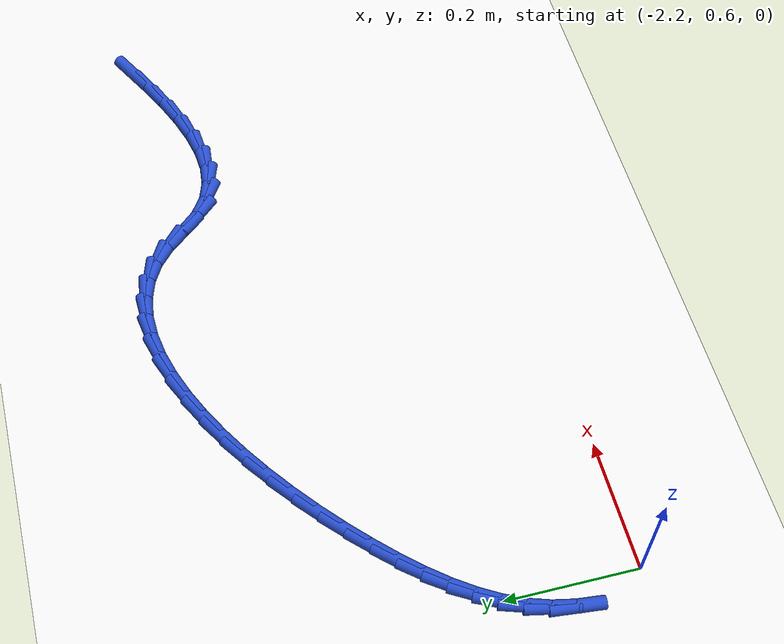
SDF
<sdf version="1.6">
 <world name="default">
  <model name="ground_plane">
   <static>1</static>
   <link name="link">
    <collision name="collision">
     <geometry><plane><normal>0 0 1</normal><size>100 100</size></plane></geometry>
     <surface><friction><ode><mu>100</mu><mu2>50</mu2></ode></friction></surface>
    </collision>
    <visual name="visual">
     <cast_shadows>0</cast_shadows>
     <geometry><plane><normal>0 0 1</normal><size>100 100</size></plane></geometry>
     <material>
      <script><uri>file://media/materials/scripts/gazebo.material</uri><name>Gazebo/WhiteGlow</name></script>
     </material>
    </visual>
   </link>
  </model>
  <model name="line">
   <link name="link_52">
    <pose>-1.1404493071504342 1.1322028931293782 0.01 0 1.57 0.4921242826165503</pose>
    <collision name="collision">
     <geometry><cylinder><radius>0.01</radius><length>0.08</length></cylinder></geometry>
    </collision>
    <visual name="visual">
     <material>
      <script><name>Gazebo/Blue</name><uri>file://media/materials/scripts/gazebo.material</uri></script>
     </material>
     <geometry><cylinder><radius>0.01</radius><length>0.08</length></cylinder></geometry>
    </visual>
   </link>
   <link name="link_53">
    <pose>-1.1806137460902888 1.1106699384140308 0.01 0 1.57 0.4538494542034885</pose>
    <collision name="collision">
     <geometry><cylinder><radius>0.01</radius><length>0.08</length></cylinder></geometry>
    </collision>
    <visual name="visual">
     <material>
      <script><name>Gazebo/Blue</name><uri>file://media/materials/scripts/gazebo.material</uri></script>
     </material>
     <geometry><cylinder><radius>0.01</radius><length>0.08</length></cylinder></geometry>
    </visual>
   </link>
   <link name="link_54">
    <pose>-1.2206163328980695 1.0911562114097548 0.01 0 1.57 0.3990125655813832</pose>
    <collision name="collision">
     <geometry><cylinder><radius>0.01</radius><length>0.08</length></cylinder></geometry>
    </collision>
    <visual name="visual">
     <material>
      <script><name>Gazebo/Blue</name><uri>file://media/materials/scripts/gazebo.material</uri></script>
     </material>
     <geometry><cylinder><radius>0.01</radius><length>0.08</length></cylinder></geometry>
    </visual>
   </link>
   <link name="link_55">
    <pose>-1.260061687138467 1.074524876100984 0.01 0 1.57 0.3230328263287502</pose>
    <collision name="collision">
     <geometry><cylinder><radius>0.01</radius><length>0.08</length></cylinder></geometry>
    </collision>
    <visual name="visual">
     <material>
      <script><name>Gazebo/Blue</name><uri>file://media/materials/scripts/gazebo.material</uri></script>
     </material>
     <geometry><cylinder><radius>0.01</radius><length>0.08</length></cylinder></geometry>
    </visual>
   </link>
   <link name="link_56">
    <pose>-1.2985544283761727 1.061639096472152 0.01 0 1.57 0.21925050515555328</pose>
    <collision name="collision">
     <geometry><cylinder><radius>0.01</radius><length>0.08</length></cylinder></geometry>
    </collision>
    <visual name="visual">
     <material>
      <script><name>Gazebo/Blue</name><uri>file://media/materials/scripts/gazebo.material</uri></script>
     </material>
     <geometry><cylinder><radius>0.01</radius><length>0.08</length></cylinder></geometry>
    </visual>
   </link>
   <link name="link_57">
    <pose>-1.3356991761758779 1.053362036507694 0.01 0 1.57 0.07907397174544131</pose>
    <collision name="collision">
     <geometry><cylinder><radius>0.01</radius><length>0.08</length></cylinder></geometry>
    </collision>
    <visual name="visual">
     <material>
      <script><name>Gazebo/Blue</name><uri>file://media/materials/scripts/gazebo.material</uri></script>
     </material>
     <geometry><cylinder><radius>0.01</radius><length>0.08</length></cylinder></geometry>
    </visual>
   </link>
   <link name="link_58">
    <pose>-1.3711005501022735 1.0505568601920439 0.01 0 1.57 -0.10572556728788335</pose>
    <collision name="collision">
     <geometry><cylinder><radius>0.01</radius><length>0.08</length></cylinder></geometry>
    </collision>
    <visual name="visual">
     <material>
      <script><name>Gazebo/Blue</name><uri>file://media/materials/scripts/gazebo.material</uri></script>
     </material>
     <geometry><cylinder><radius>0.01</radius><length>0.08</length></cylinder></geometry>
    </visual>
   </link>
   <link name="link_59">
    <pose>-1.404363169720051 1.0540867315096354 0.01 0 1.57 -0.3358951157535757</pose>
    <collision name="collision">
     <geometry><cylinder><radius>0.01</radius><length>0.08</length></cylinder></geometry>
    </collision>
    <visual name="visual">
     <material>
      <script><name>Gazebo/Blue</name><uri>file://media/materials/scripts/gazebo.material</uri></script>
     </material>
     <geometry><cylinder><radius>0.01</radius><length>0.08</length></cylinder></geometry>
    </visual>
   </link>
   <link name="link_60">
    <pose>-1.4350916545939016 1.0648148144449028 0.01 0 1.57 -0.5943710312892465</pose>
    <collision name="collision">
     <geometry><cylinder><radius>0.01</radius><length>0.08</length></cylinder></geometry>
    </collision>
    <visual name="visual">
     <material>
      <script><name>Gazebo/Blue</name><uri>file://media/materials/scripts/gazebo.material</uri></script>
     </material>
     <geometry><cylinder><radius>0.01</radius><length>0.08</length></cylinder></geometry>
    </visual>
   </link>
   <link name="link_61">
    <pose>-1.4628906242885162 1.0836042729822803 0.01 0 1.57 -0.8263065147633406</pose>
    <collision name="collision">
     <geometry><cylinder><radius>0.01</radius><length>0.08</length></cylinder></geometry>
    </collision>
    <visual name="visual">
     <material>
      <script><name>Gazebo/Blue</name><uri>file://media/materials/scripts/gazebo.material</uri></script>
     </material>
     <geometry><cylinder><radius>0.01</radius><length>0.08</length></cylinder></geometry>
    </visual>
   </link>
   <link name="link_62">
    <pose>-1.4876874850941624 1.110517697109729 0.01 0 1.57 -0.8735001498892482</pose>
    <collision name="collision">
     <geometry><cylinder><radius>0.01</radius><length>0.08</length></cylinder></geometry>
    </collision>
    <visual name="visual">
     <material>
      <script><name>Gazebo/Blue</name><uri>file://media/materials/scripts/gazebo.material</uri></script>
     </material>
     <geometry><cylinder><radius>0.01</radius><length>0.08</length></cylinder></geometry>
    </visual>
   </link>
   <link name="link_63">
    <pose>-1.5119051842288271 1.1394282488878325 0.01 0 1.57 -0.7202565079342788</pose>
    <collision name="collision">
     <geometry><cylinder><radius>0.01</radius><length>0.08</length></cylinder></geometry>
    </collision>
    <visual name="visual">
     <material>
      <script><name>Gazebo/Blue</name><uri>file://media/materials/scripts/gazebo.material</uri></script>
     </material>
     <geometry><cylinder><radius>0.01</radius><length>0.08</length></cylinder></geometry>
    </visual>
   </link>
   <link name="link_64">
    <pose>-1.5385237035790633 1.1627865806515727 0.01 0 1.57 -0.5131491003804508</pose>
    <collision name="collision">
     <geometry><cylinder><radius>0.01</radius><length>0.08</length></cylinder></geometry>
    </collision>
    <visual name="visual">
     <material>
      <script><name>Gazebo/Blue</name><uri>file://media/materials/scripts/gazebo.material</uri></script>
     </material>
     <geometry><cylinder><radius>0.01</radius><length>0.08</length></cylinder></geometry>
    </visual>
   </link>
   <link name="link_65">
    <pose>-1.5679104527633096 1.1793460262359141 0.01 0 1.57 -0.3108375934351968</pose>
    <collision name="collision">
     <geometry><cylinder><radius>0.01</radius><length>0.08</length></cylinder></geometry>
    </collision>
    <visual name="visual">
     <material>
      <script><name>Gazebo/Blue</name><uri>file://media/materials/scripts/gazebo.material</uri></script>
     </material>
     <geometry><cylinder><radius>0.01</radius><length>0.08</length></cylinder></geometry>
    </visual>
   </link>
   <link name="link_66">
    <pose>-1.5997254298082269 1.1895666287103381 0.01 0 1.57 -0.1273721965579721</pose>
    <collision name="collision">
     <geometry><cylinder><radius>0.01</radius><length>0.08</length></cylinder></geometry>
    </collision>
    <visual name="visual">
     <material>
      <script><name>Gazebo/Blue</name><uri>file://media/materials/scripts/gazebo.material</uri></script>
     </material>
     <geometry><cylinder><radius>0.01</radius><length>0.08</length></cylinder></geometry>
    </visual>
   </link>
   <link name="link_67">
    <pose>-1.6336286214904598 1.1939084582862414 0.01 0 1.57 0.03019645772132437</pose>
    <collision name="collision">
     <geometry><cylinder><radius>0.01</radius><length>0.08</length></cylinder></geometry>
    </collision>
    <visual name="visual">
     <material>
      <script><name>Gazebo/Blue</name><uri>file://media/materials/scripts/gazebo.material</uri></script>
     </material>
     <geometry><cylinder><radius>0.01</radius><length>0.08</length></cylinder></geometry>
    </visual>
   </link>
   <link name="link_68">
    <pose>-1.6692800145866542 1.1928315851750193 0.01 0 1.57 0.16144215438989382</pose>
    <collision name="collision">
     <geometry><cylinder><radius>0.01</radius><length>0.08</length></cylinder></geometry>
    </collision>
    <visual name="visual">
     <material>
      <script><name>Gazebo/Blue</name><uri>file://media/materials/scripts/gazebo.material</uri></script>
     </material>
     <geometry><cylinder><radius>0.01</radius><length>0.08</length></cylinder></geometry>
    </visual>
   </link>
   <link name="link_69">
    <pose>-1.7063395958734566 1.1867960795880688 0.01 0 1.57 0.2695590276181311</pose>
    <collision name="collision">
     <geometry><cylinder><radius>0.01</radius><length>0.08</length></cylinder></geometry>
    </collision>
    <visual name="visual">
     <material>
      <script><name>Gazebo/Blue</name><uri>file://media/materials/scripts/gazebo.material</uri></script>
     </material>
     <geometry><cylinder><radius>0.01</radius><length>0.08</length></cylinder></geometry>
    </visual>
   </link>
   <link name="link_70">
    <pose>-1.7444673521275116 1.1762620117367861 0.01 0 1.57 0.3588065599918949</pose>
    <collision name="collision">
     <geometry><cylinder><radius>0.01</radius><length>0.08</length></cylinder></geometry>
    </collision>
    <visual name="visual">
     <material>
      <script><name>Gazebo/Blue</name><uri>file://media/materials/scripts/gazebo.material</uri></script>
     </material>
     <geometry><cylinder><radius>0.01</radius><length>0.08</length></cylinder></geometry>
    </visual>
   </link>
   <link name="link_71">
    <pose>-1.783323270125464 1.1616894518325669 0.01 0 1.57 0.43321278377351413</pose>
    <collision name="collision">
     <geometry><cylinder><radius>0.01</radius><length>0.08</length></cylinder></geometry>
    </collision>
    <visual name="visual">
     <material>
      <script><name>Gazebo/Blue</name><uri>file://media/materials/scripts/gazebo.material</uri></script>
     </material>
     <geometry><cylinder><radius>0.01</radius><length>0.08</length></cylinder></geometry>
    </visual>
   </link>
   <link name="link_72">
    <pose>-1.8225673366439603 1.1435384700868079 0.01 0 1.57 0.4961483633403605</pose>
    <collision name="collision">
     <geometry><cylinder><radius>0.01</radius><length>0.08</length></cylinder></geometry>
    </collision>
    <visual name="visual">
     <material>
      <script><name>Gazebo/Blue</name><uri>file://media/materials/scripts/gazebo.material</uri></script>
     </material>
     <geometry><cylinder><radius>0.01</radius><length>0.08</length></cylinder></geometry>
    </visual>
   </link>
   <link name="link_73">
    <pose>-1.8618595384596466 1.1222691367109043 0.01 0 1.57 0.5503039454989364</pose>
    <collision name="collision">
     <geometry><cylinder><radius>0.01</radius><length>0.08</length></cylinder></geometry>
    </collision>
    <visual name="visual">
     <material>
      <script><name>Gazebo/Blue</name><uri>file://media/materials/scripts/gazebo.material</uri></script>
     </material>
     <geometry><cylinder><radius>0.01</radius><length>0.08</length></cylinder></geometry>
    </visual>
   </link>
   <link name="link_74">
    <pose>-1.9008598623491666 1.0983415219162536 0.01 0 1.57 0.5978053632920111</pose>
    <collision name="collision">
     <geometry><cylinder><radius>0.01</radius><length>0.08</length></cylinder></geometry>
    </collision>
    <visual name="visual">
     <material>
      <script><name>Gazebo/Blue</name><uri>file://media/materials/scripts/gazebo.material</uri></script>
     </material>
     <geometry><cylinder><radius>0.01</radius><length>0.08</length></cylinder></geometry>
    </visual>
   </link>
   <link name="link_75">
    <pose>-1.939228295089167 1.0722156959142513 0.01 0 1.57 0.6403545227408854</pose>
    <collision name="collision">
     <geometry><cylinder><radius>0.01</radius><length>0.08</length></cylinder></geometry>
    </collision>
    <visual name="visual">
     <material>
      <script><name>Gazebo/Blue</name><uri>file://media/materials/scripts/gazebo.material</uri></script>
     </material>
     <geometry><cylinder><radius>0.01</radius><length>0.08</length></cylinder></geometry>
    </visual>
   </link>
   <link name="link_76">
    <pose>-1.9766248234562935 1.0443517289162931 0.01 0 1.57 0.6793597189799967</pose>
    <collision name="collision">
     <geometry><cylinder><radius>0.01</radius><length>0.08</length></cylinder></geometry>
    </collision>
    <visual name="visual">
     <material>
      <script><name>Gazebo/Blue</name><uri>file://media/materials/scripts/gazebo.material</uri></script>
     </material>
     <geometry><cylinder><radius>0.01</radius><length>0.08</length></cylinder></geometry>
    </visual>
   </link>
   <link name="link_77">
    <pose>-2.0127094342271907 1.0152096911337765 0.01 0 1.57 0.716050732968985</pose>
    <collision name="collision">
     <geometry><cylinder><radius>0.01</radius><length>0.08</length></cylinder></geometry>
    </collision>
    <visual name="visual">
     <material>
      <script><name>Gazebo/Blue</name><uri>file://media/materials/scripts/gazebo.material</uri></script>
     </material>
     <geometry><cylinder><radius>0.01</radius><length>0.08</length></cylinder></geometry>
    </visual>
   </link>
   <link name="link_78">
    <pose>-2.0471421141785044 0.9852496527780966 0.01 0 1.57 0.7515867866394877</pose>
    <collision name="collision">
     <geometry><cylinder><radius>0.01</radius><length>0.08</length></cylinder></geometry>
    </collision>
    <visual name="visual">
     <material>
      <script><name>Gazebo/Blue</name><uri>file://media/materials/scripts/gazebo.material</uri></script>
     </material>
     <geometry><cylinder><radius>0.01</radius><length>0.08</length></cylinder></geometry>
    </visual>
   </link>
   <link name="link_79">
    <pose>-2.0795828500868807 0.9549316840606497 0.01 0 1.57 0.7875512884475531</pose>
    <collision name="collision">
     <geometry><cylinder><radius>0.01</radius><length>0.08</length></cylinder></geometry>
    </collision>
    <visual name="visual">
     <material>
      <script><name>Gazebo/Blue</name><uri>file://media/materials/scripts/gazebo.material</uri></script>
     </material>
     <geometry><cylinder><radius>0.01</radius><length>0.08</length></cylinder></geometry>
    </visual>
   </link>
   <link name="link_80">
    <pose>-2.1096951903334493 0.9246893925437254 0.01 0 1.57 0.8306008485797518</pose>
    <collision name="collision">
     <geometry><cylinder><radius>0.01</radius><length>0.08</length></cylinder></geometry>
    </collision>
    <visual name="visual">
     <material>
      <script><name>Gazebo/Blue</name><uri>file://media/materials/scripts/gazebo.material</uri></script>
     </material>
     <geometry><cylinder><radius>0.01</radius><length>0.08</length></cylinder></geometry>
    </visual>
   </link>
   <link name="link_81">
    <pose>-2.137192439790786 0.8945866960670597 0.01 0 1.57 0.8861250071388266</pose>
    <collision name="collision">
     <geometry><cylinder><radius>0.01</radius><length>0.08</length></cylinder></geometry>
    </collision>
    <visual name="visual">
     <material>
      <script><name>Gazebo/Blue</name><uri>file://media/materials/scripts/gazebo.material</uri></script>
     </material>
     <geometry><cylinder><radius>0.01</radius><length>0.08</length></cylinder></geometry>
    </visual>
   </link>
   <link name="link_82">
    <pose>-2.1618244745609596 0.8644157889767922 0.01 0 1.57 0.9556697781211653</pose>
    <collision name="collision">
     <geometry><cylinder><radius>0.01</radius><length>0.08</length></cylinder></geometry>
    </collision>
    <visual name="visual">
     <material>
      <script><name>Gazebo/Blue</name><uri>file://media/materials/scripts/gazebo.material</uri></script>
     </material>
     <geometry><cylinder><radius>0.01</radius><length>0.08</length></cylinder></geometry>
    </visual>
   </link>
   <link name="link_83">
    <pose>-2.183342016690263 0.8339625802706198 0.01 0 1.57 1.0403184379333723</pose>
    <collision name="collision">
     <geometry><cylinder><radius>0.01</radius><length>0.08</length></cylinder></geometry>
    </collision>
    <visual name="visual">
     <material>
      <script><name>Gazebo/Blue</name><uri>file://media/materials/scripts/gazebo.material</uri></script>
     </material>
     <geometry><cylinder><radius>0.01</radius><length>0.08</length></cylinder></geometry>
    </visual>
   </link>
   <link name="link_84">
    <pose>-2.2014957882249906 0.8030129789462381 0.01 0 1.57 1.1402551556222162</pose>
    <collision name="collision">
     <geometry><cylinder><radius>0.01</radius><length>0.08</length></cylinder></geometry>
    </collision>
    <visual name="visual">
     <material>
      <script><name>Gazebo/Blue</name><uri>file://media/materials/scripts/gazebo.material</uri></script>
     </material>
     <geometry><cylinder><radius>0.01</radius><length>0.08</length></cylinder></geometry>
    </visual>
   </link>
   <link name="link_85">
    <pose>-2.216036511211436 0.7713528940013437 0.01 0 1.57 1.2538114602415407</pose>
    <collision name="collision">
     <geometry><cylinder><radius>0.01</radius><length>0.08</length></cylinder></geometry>
    </collision>
    <visual name="visual">
     <material>
      <script><name>Gazebo/Blue</name><uri>file://media/materials/scripts/gazebo.material</uri></script>
     </material>
     <geometry><cylinder><radius>0.01</radius><length>0.08</length></cylinder></geometry>
    </visual>
   </link>
   <link name="link_86">
    <pose>-2.2267244649467415 0.7387722864156653 0.01 0 1.57 1.3680088540732445</pose>
    <collision name="collision">
     <geometry><cylinder><radius>0.01</radius><length>0.08</length></cylinder></geometry>
    </collision>
    <visual name="visual">
     <material>
      <script><name>Gazebo/Blue</name><uri>file://media/materials/scripts/gazebo.material</uri></script>
     </material>
     <geometry><cylinder><radius>0.01</radius><length>0.08</length></cylinder></geometry>
    </visual>
   </link>
   <link name="link_87">
    <pose>-2.233629000136838 0.7051921539927031 0.01 0 1.57 1.4680030301778164</pose>
    <collision name="collision">
     <geometry><cylinder><radius>0.01</radius><length>0.08</length></cylinder></geometry>
    </collision>
    <visual name="visual">
     <material>
      <script><name>Gazebo/Blue</name><uri>file://media/materials/scripts/gazebo.material</uri></script>
     </material>
     <geometry><cylinder><radius>0.01</radius><length>0.08</length></cylinder></geometry>
    </visual>
   </link>
  </model>
 </world>
</sdf>
